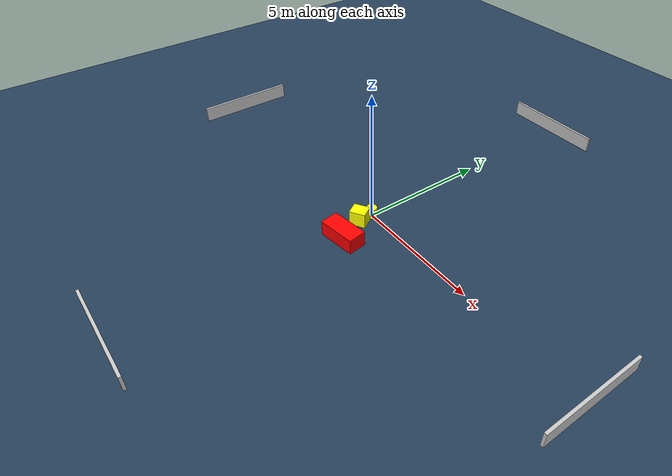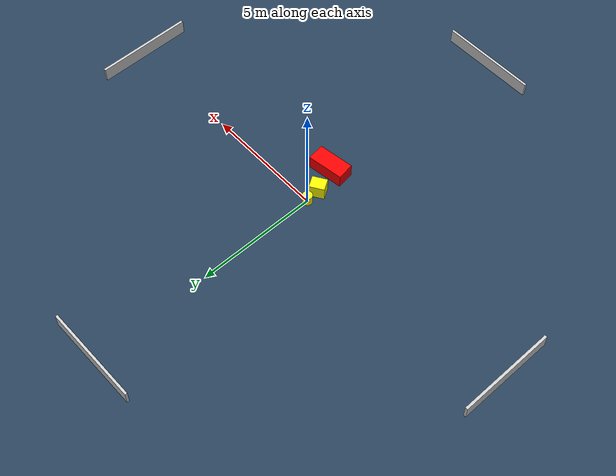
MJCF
<?xml version="1.0" ?>
<mujoco model="generated_environment">
  <option timestep="0.01" integrator="RK4" cone="elliptic"/>
  <default>
    <geom density="1"/>
  </default>
  <asset>
    <texture builtin="gradient" height="3072" name="skybox" rgb1="0.3 0.5 0.7" rgb2="0 0 0" type="skybox" width="512"/>
    <texture builtin="checker" height="300" name="groundplane" rgb1="0.2 0.3 0.4" rgb2="0.1 0.2 0.3" type="2d" width="300"/>
    <material name="groundplane" reflectance="0.2" texrepeat="5 5" texture="groundplane"/>
  </asset>
  <worldbody>
    <light dir="0 0 -1" directional="true" pos="0 0 1.5"/>
    <geom condim="3" friction="0.5 0.005 0.001" material="groundplane" name="floor" pos="0 0 0" size="0 0 0.05" type="plane"/>
    <body name="walls">
      <geom name="wall_1" condim="4" pos="-10.0 0.0 0.3" rgba="0.800000011920929 0.800000011920929 0.800000011920929 1.0" size="0.05 2.0 0.3" type="box"/>
      <geom name="wall_2" condim="4" pos="10.0 0.0 0.3" rgba="0.800000011920929 0.800000011920929 0.800000011920929 1.0" size="0.05 2.0 0.3" type="box"/>
      <geom name="wall_3" condim="4" pos="0.0 -10.0 0.3" rgba="0.800000011920929 0.800000011920929 0.800000011920929 1.0" size="2.0 0.05 0.3" type="box"/>
      <geom name="wall_4" condim="4" pos="0.0 10.0 0.3" rgba="0.800000011920929 0.800000011920929 0.800000011920929 1.0" size="2.0 0.05 0.3" type="box"/>
    </body>
    <body name="robot">
      <joint name="joint_x" type="slide" pos="0 0 0" axis="1 0 0"/>
      <joint name="joint_y" type="slide" pos="0 0 0" axis="0 1 0"/>
      <geom name="robot" type="cylinder" pos="0.0 0.0 0.2" size="0.2 0.2 0.0" mass="5.0" friction="1.0 0.005 0.0001" condim="4" rgba="1.0 1.0 0.0 1.0"/>
    </body>
    <body name="obstacle_1_movable">
      <geom name="obstacle_1_movable" condim="4" pos="0.03606935761820449 -0.5846778048919496 0.3" euler="0 0 121.95678133424506" friction="0.0 0.005 0.001" rgba="1.0 1.0 0.0 1.0" size="0.2533743194950219 0.3071607095895703 0.3" type="box" mass="0.1"/>
      <joint type="free"/>
    </body>
    <body name="obstacle_2_static">
      <geom name="obstacle_2_static" condim="4" pos="0.46142147450965176 -1.6101620153781286 0.3" euler="0 0 8.297045059809843" friction="0.0 0.005 0.001" rgba="1.0 0.0 0.0 1.0" size="0.7401684324559925 0.35358007259230334 0.3" type="box"/>
    </body>
  </worldbody>
  <actuator>
    <motor name="actuator_x" joint="joint_x" gear="1" ctrlrange="-1 1"/>
    <motor name="actuator_y" joint="joint_y" gear="1" ctrlrange="-1 1"/>
  </actuator>
</mujoco>
